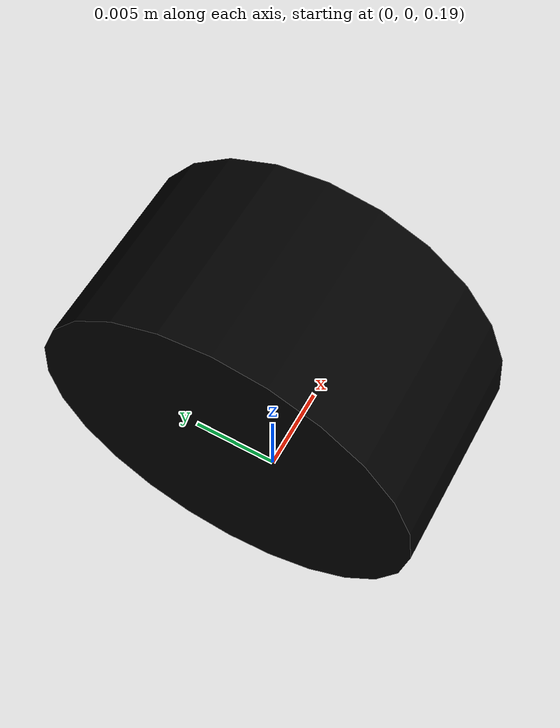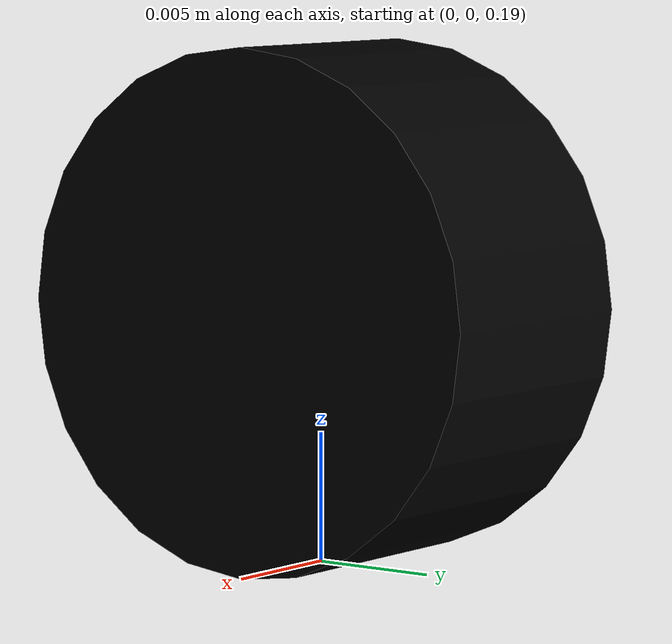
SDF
<?xml version='1.0'?>
<sdf version='1.9'>
  <model name="segmentation_model">
    <pose>0 0 0.18 0 0 0</pose>
    <link name='base_link'>
      <inertial>
        <mass>0.02</mass>
        <inertia>
          <ixx>0.0001</ixx>
          <ixy>0</ixy>
          <ixz>0</ixz>
          <iyy>0.0001</iyy>
          <iyz>0</iyz>
          <izz>0.0001</izz>
        </inertia>
      </inertial>
      <visual name='camera_viz'>
        <pose>0 0 0.02 0 1.57 0</pose>
        <geometry>
          <cylinder>
            <radius>0.01</radius>
            <length>0.01</length>
          </cylinder>
        </geometry>
        <material>
          <ambient>0 0 0 1</ambient>
          <diffuse>0 0 0 1</diffuse>
          <specular>0 0 0 1</specular>
        </material>
      </visual>
      <collision name='camera_col'>
        <pose>0 0 0.02 0 1.57 0</pose>
        <geometry>
          <cylinder>
            <radius>0.01</radius>
            <length>0.01</length>
          </cylinder>
        </geometry>
      </collision>

      <sensor name="segmentation_camera" type="segmentation">
        <pose>0 0 0 0 0 0</pose>

        <topic>/segmentation</topic>

        <camera>
          <horizontal_fov>1.57</horizontal_fov>

          <image>
            <width>640</width>
            <height>480</height>
            <format>R8G8B8</format>
          </image>

          <clip>
            <near>0.1</near>
            <far>100</far>
          </clip>
          <!--For black and white segmentation-->
          <segmentation_type>semantic</segmentation_type>
          <!--For Color Segmentation-->
        </camera>

        <always_on>false</always_on>
        <update_rate>15</update_rate>
        <visualize>false</visualize>
      </sensor>

      <sensor name="camera" type="camera">
        <pose>0 0 0 0 0 0</pose>
        <topic>/camera/rgb</topic>
        <camera>
          <horizontal_fov>1.57</horizontal_fov>
          <image>
            <width>640</width>
            <height>480</height>
            <format>R8G8B8</format>
          </image>
          <clip>
            <near>0.1</near>
            <far>100</far>
          </clip>
        </camera>

        <always_on>false</always_on>
        <update_rate>15</update_rate>
        <visualize>false</visualize>
      </sensor>
    </link>
  </model>
</sdf>
